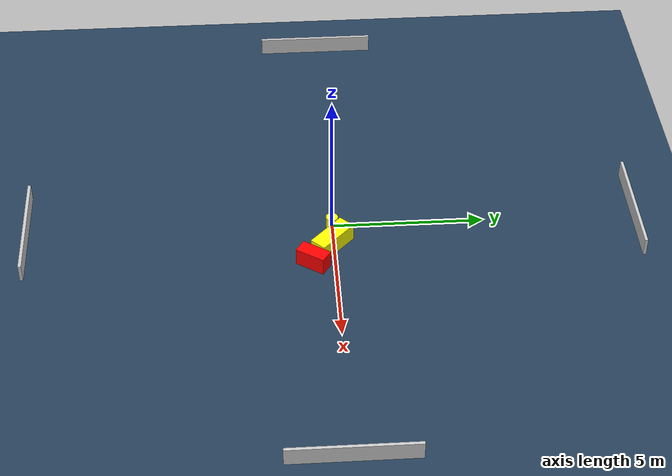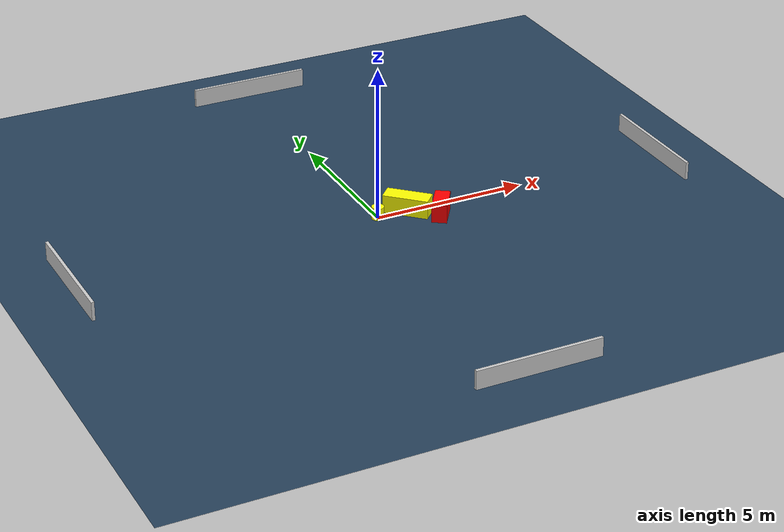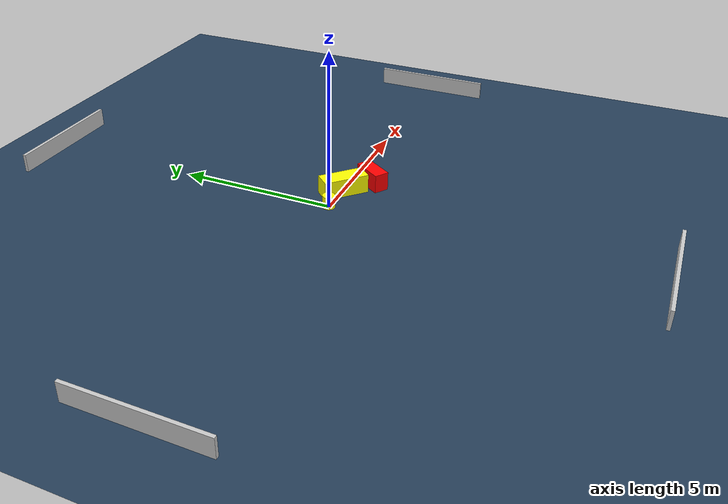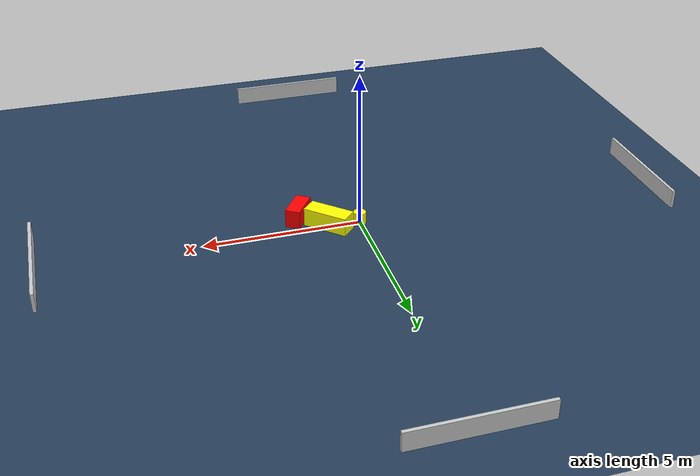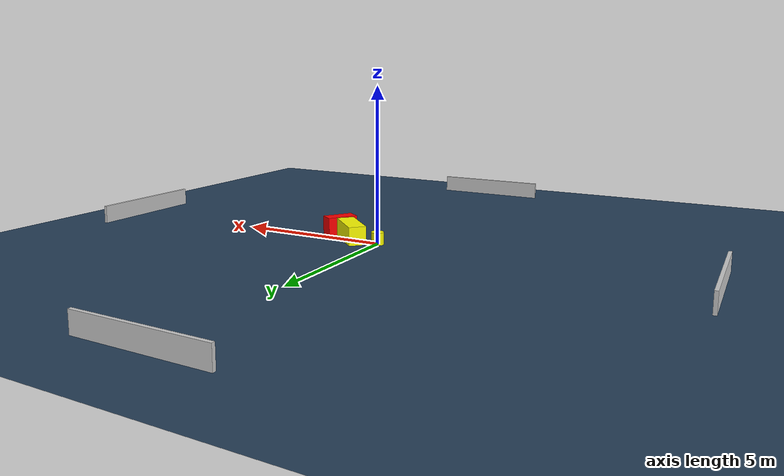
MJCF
<?xml version="1.0" ?>
<mujoco model="generated_environment">
  <option timestep="0.01" integrator="RK4" cone="elliptic"/>
  <default>
    <geom density="1"/>
  </default>
  <asset>
    <texture builtin="gradient" height="3072" name="skybox" rgb1="0.3 0.5 0.7" rgb2="0 0 0" type="skybox" width="512"/>
    <texture builtin="checker" height="300" name="groundplane" rgb1="0.2 0.3 0.4" rgb2="0.1 0.2 0.3" type="2d" width="300"/>
    <material name="groundplane" reflectance="0.2" texrepeat="5 5" texture="groundplane"/>
  </asset>
  <worldbody>
    <light dir="0 0 -1" directional="true" pos="0 0 1.5"/>
    <geom condim="3" friction="0.5 0.005 0.001" material="groundplane" name="floor" pos="0 0 0" size="0 0 0.05" type="plane"/>
    <body name="walls">
      <geom name="wall_1" condim="4" pos="-10.0 0.0 0.3" rgba="0.800000011920929 0.800000011920929 0.800000011920929 1.0" size="0.05 2.0 0.3" type="box"/>
      <geom name="wall_2" condim="4" pos="10.0 0.0 0.3" rgba="0.800000011920929 0.800000011920929 0.800000011920929 1.0" size="0.05 2.0 0.3" type="box"/>
      <geom name="wall_3" condim="4" pos="0.0 -10.0 0.3" rgba="0.800000011920929 0.800000011920929 0.800000011920929 1.0" size="2.0 0.05 0.3" type="box"/>
      <geom name="wall_4" condim="4" pos="0.0 10.0 0.3" rgba="0.800000011920929 0.800000011920929 0.800000011920929 1.0" size="2.0 0.05 0.3" type="box"/>
    </body>
    <body name="robot">
      <joint name="joint_x" type="slide" pos="0 0 0" axis="1 0 0"/>
      <joint name="joint_y" type="slide" pos="0 0 0" axis="0 1 0"/>
      <geom name="robot" type="cylinder" pos="0.0 0.0 0.2" size="0.2 0.2 0.0" mass="5.0" friction="1.0 0.005 0.0001" condim="4" rgba="1.0 1.0 0.0 1.0"/>
    </body>
    <body name="obstacle_1_movable">
      <geom name="obstacle_1_movable" condim="4" pos="1.0018703069598323 -0.04918497083390439 0.3" euler="0 0 226.26062794551785" friction="0.0 0.005 0.001" rgba="1.0 1.0 0.0 1.0" size="0.2828480717168754 0.7309878279441968 0.3" type="box" mass="0.1"/>
      <joint type="free"/>
    </body>
    <body name="obstacle_2_static">
      <geom name="obstacle_2_static" condim="4" pos="1.83056398695479 -0.705922406606365 0.3" euler="0 0 55.966474771156285" friction="0.0 0.005 0.001" rgba="1.0 0.0 0.0 1.0" size="0.5052311940376557 0.23893181417085013 0.3" type="box"/>
    </body>
  </worldbody>
  <actuator>
    <motor name="actuator_x" joint="joint_x" gear="1" ctrlrange="-1 1"/>
    <motor name="actuator_y" joint="joint_y" gear="1" ctrlrange="-1 1"/>
  </actuator>
</mujoco>
